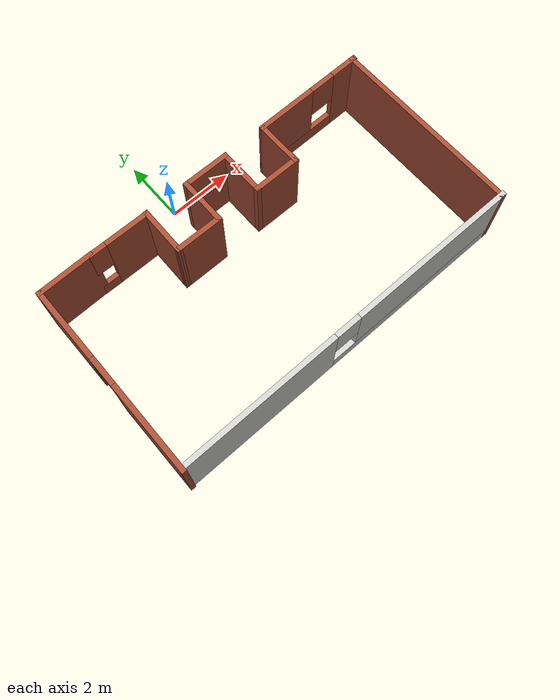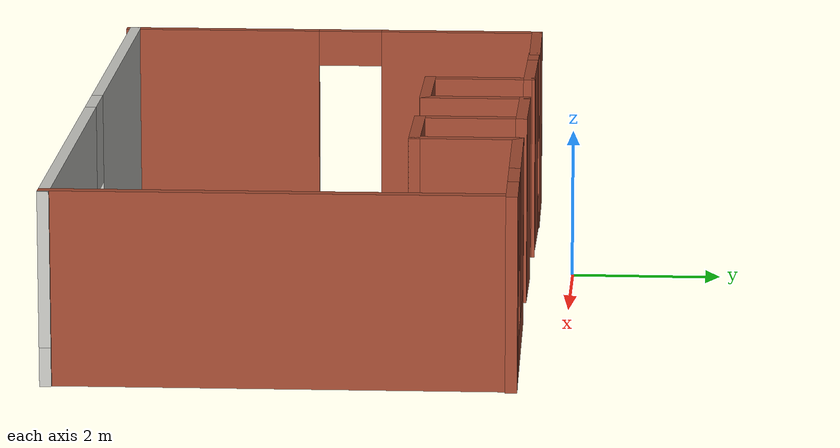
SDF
<?xml version='1.0'?>
<sdf version='1.6'>
  <model name='wall_structure'>
    <pose frame=''>0.919538 -3.54038 0 0 -0 0</pose>
    <link name='Wall_0'>
      <collision name='Wall_0_Collision'>
        <geometry>
          <box>
            <size>1.76012 0.15 2.5</size>
          </box>
        </geometry>
        <pose frame=''>0 0 1.25 0 -0 0</pose>
      </collision>
      <visual name='Wall_0_Visual'>
        <pose frame=''>0 0 1.25 0 -0 0</pose>
        <geometry>
          <box>
            <size>1.76012 0.15 2.5</size>
          </box>
        </geometry>
        <material>
          <script>
            <uri>file://media/materials/scripts/gazebo.material</uri>
            <name>Gazebo/Bricks</name>
          </script>
          <ambient>0.760784 0.662745 0.627451 1</ambient>
        </material>
        <meta>
          <layer>0</layer>
        </meta>
      </visual>
      <pose frame=''>-4.66454 2.91038 0 0 0 -3.12917</pose>
    </link>
    <link name='Wall_1'>
      <pose frame=''>-5.47954 -0.018632 0 0 0 -1.57422</pose>
      <visual name='Wall_1_Visual_0'>
        <pose frame=''>-1.84013 0 1.25 0 -0 0</pose>
        <geometry>
          <box>
            <size>2.30781 0.15 2.5</size>
          </box>
        </geometry>
        <material>
          <script>
            <uri>file://media/materials/scripts/gazebo.material</uri>
            <name>Gazebo/Bricks</name>
          </script>
          <ambient>0.760784 0.662745 0.627451 1</ambient>
        </material>
        <meta>
          <layer>0</layer>
        </meta>
      </visual>
      <collision name='Wall_1_Collision_0'>
        <geometry>
          <box>
            <size>2.30781 0.15 2.5</size>
          </box>
        </geometry>
        <pose frame=''>-1.84013 0 1.25 0 -0 0</pose>
      </collision>
      <visual name='Wall_1_Visual_1'>
        <pose frame=''>1.6039 0 1.25 0 -0 0</pose>
        <geometry>
          <box>
            <size>2.78025 0.15 2.5</size>
          </box>
        </geometry>
        <material>
          <script>
            <uri>file://media/materials/scripts/gazebo.material</uri>
            <name>Gazebo/Bricks</name>
          </script>
          <ambient>0.760784 0.662745 0.627451 1</ambient>
        </material>
        <meta>
          <layer>0</layer>
        </meta>
      </visual>
      <collision name='Wall_1_Collision_1'>
        <geometry>
          <box>
            <size>2.78025 0.15 2.5</size>
          </box>
        </geometry>
        <pose frame=''>1.6039 0 1.25 0 -0 0</pose>
      </collision>
      <visual name='Wall_1_Visual_2'>
        <pose frame=''>-0.236222 0 2.25 0 -0 0</pose>
        <geometry>
          <box>
            <size>0.9 0.15 0.5</size>
          </box>
        </geometry>
        <material>
          <script>
            <uri>file://media/materials/scripts/gazebo.material</uri>
            <name>Gazebo/Bricks</name>
          </script>
          <ambient>0.760784 0.662745 0.627451 1</ambient>
        </material>
        <meta>
          <layer>0</layer>
        </meta>
      </visual>
      <collision name='Wall_1_Collision_2'>
        <geometry>
          <box>
            <size>0.9 0.15 0.5</size>
          </box>
        </geometry>
        <pose frame=''>-0.236222 0 2.25 0 -0 0</pose>
      </collision>
    </link>
    <link name='Wall_10'>
      <collision name='Wall_10_Collision'>
        <geometry>
          <box>
            <size>1.5 0.15 2.5</size>
          </box>
        </geometry>
        <pose frame=''>0 0 1.25 0 -0 0</pose>
      </collision>
      <visual name='Wall_10_Visual'>
        <pose frame=''>0 0 1.25 0 -0 0</pose>
        <geometry>
          <box>
            <size>1.5 0.15 2.5</size>
          </box>
        </geometry>
        <material>
          <script>
            <uri>file://media/materials/scripts/gazebo.material</uri>
            <name>Gazebo/Bricks</name>
          </script>
          <ambient>0.760784 0.662745 0.627451 1</ambient>
        </material>
        <meta>
          <layer>0</layer>
        </meta>
      </visual>
      <pose frame=''>-1.36454 1.54038 0 0 -0 3.14159</pose>
    </link>
    <link name='Wall_11'>
      <collision name='Wall_11_Collision'>
        <geometry>
          <box>
            <size>1.52004 0.15 2.5</size>
          </box>
        </geometry>
        <pose frame=''>0 0 1.25 0 -0 0</pose>
      </collision>
      <visual name='Wall_11_Visual'>
        <pose frame=''>0 0 1.25 0 -0 0</pose>
        <geometry>
          <box>
            <size>1.52004 0.15 2.5</size>
          </box>
        </geometry>
        <material>
          <script>
            <uri>file://media/materials/scripts/gazebo.material</uri>
            <name>Gazebo/Bricks</name>
          </script>
          <ambient>0.760784 0.662745 0.627451 1</ambient>
        </material>
        <meta>
          <layer>0</layer>
        </meta>
      </visual>
      <pose frame=''>-2.03454 2.22538 0 0 -0 1.5635</pose>
    </link>
    <link name='Wall_12'>
      <pose frame=''>-2.94454 2.90538 0 0 -0 3.13613</pose>
      <visual name='Wall_12_Visual_0'>
        <pose frame=''>-0.272445 0 1.25 0 -0 0</pose>
        <geometry>
          <box>
            <size>1.43514 0.15 2.5</size>
          </box>
        </geometry>
        <material>
          <script>
            <uri>file://media/materials/scripts/gazebo.material</uri>
            <name>Gazebo/Bricks</name>
          </script>
          <ambient>0.760784 0.662745 0.627451 1</ambient>
        </material>
        <meta>
          <layer>0</layer>
        </meta>
      </visual>
      <collision name='Wall_12_Collision_0'>
        <geometry>
          <box>
            <size>1.43514 0.15 2.5</size>
          </box>
        </geometry>
        <pose frame=''>-0.272445 0 1.25 0 -0 0</pose>
      </collision>
      <visual name='Wall_12_Visual_1'>
        <pose frame=''>0.717569 0 0.25 0 -0 0</pose>
        <geometry>
          <box>
            <size>0.54489 0.15 0.5</size>
          </box>
        </geometry>
        <material>
          <script>
            <uri>file://media/materials/scripts/gazebo.material</uri>
            <name>Gazebo/Bricks</name>
          </script>
          <ambient>0.760784 0.662745 0.627451 1</ambient>
        </material>
        <meta>
          <layer>0</layer>
        </meta>
      </visual>
      <collision name='Wall_12_Collision_1'>
        <geometry>
          <box>
            <size>0.54489 0.15 0.5</size>
          </box>
        </geometry>
        <pose frame=''>0.717569 0 0.25 0 -0 0</pose>
      </collision>
      <visual name='Wall_12_Visual_2'>
        <pose frame=''>0.717569 0 1.9 0 -0 0</pose>
        <geometry>
          <box>
            <size>0.54489 0.15 1.2</size>
          </box>
        </geometry>
        <material>
          <script>
            <uri>file://media/materials/scripts/gazebo.material</uri>
            <name>Gazebo/Bricks</name>
          </script>
          <ambient>0.760784 0.662745 0.627451 1</ambient>
        </material>
        <meta>
          <layer>0</layer>
        </meta>
      </visual>
      <collision name='Wall_12_Collision_2'>
        <geometry>
          <box>
            <size>0.54489 0.15 1.2</size>
          </box>
        </geometry>
        <pose frame=''>0.717569 0 1.9 0 -0 0</pose>
      </collision>
    </link>
    <link name='Wall_2'>
      <pose frame=''>-0.00037 -2.89112 0 0 -0 0</pose>
      <visual name='Wall_2_Visual_0'>
        <pose frame=''>-3.06134 0 1.25 0 -0 0</pose>
        <geometry>
          <box>
            <size>5.00566 0.15 2.5</size>
          </box>
        </geometry>
        <material>
          <script>
            <uri>file://media/materials/scripts/gazebo.material</uri>
            <name>Gazebo/CeilingTiled</name>
          </script>
          <ambient>0.921569 0.807843 0.615686 1</ambient>
        </material>
        <meta>
          <layer>0</layer>
        </meta>
      </visual>
      <collision name='Wall_2_Collision_0'>
        <geometry>
          <box>
            <size>5.00566 0.15 2.5</size>
          </box>
        </geometry>
        <pose frame=''>-3.06134 0 1.25 0 -0 0</pose>
      </collision>
      <visual name='Wall_2_Visual_1'>
        <pose frame=''>2.50283 0 0.25 0 -0 0</pose>
        <geometry>
          <box>
            <size>6.12268 0.15 0.5</size>
          </box>
        </geometry>
        <material>
          <script>
            <uri>file://media/materials/scripts/gazebo.material</uri>
            <name>Gazebo/CeilingTiled</name>
          </script>
          <ambient>0.921569 0.807843 0.615686 1</ambient>
        </material>
        <meta>
          <layer>0</layer>
        </meta>
      </visual>
      <collision name='Wall_2_Collision_1'>
        <geometry>
          <box>
            <size>6.12268 0.15 0.5</size>
          </box>
        </geometry>
        <pose frame=''>2.50283 0 0.25 0 -0 0</pose>
      </collision>
      <visual name='Wall_2_Visual_2'>
        <pose frame=''>2.90283 0 1.5 0 -0 0</pose>
        <geometry>
          <box>
            <size>5.32268 0.15 2</size>
          </box>
        </geometry>
        <material>
          <script>
            <uri>file://media/materials/scripts/gazebo.material</uri>
            <name>Gazebo/CeilingTiled</name>
          </script>
          <ambient>0.921569 0.807843 0.615686 1</ambient>
        </material>
        <meta>
          <layer>0</layer>
        </meta>
      </visual>
      <collision name='Wall_2_Collision_2'>
        <geometry>
          <box>
            <size>5.32268 0.15 2</size>
          </box>
        </geometry>
        <pose frame=''>2.90283 0 1.5 0 -0 0</pose>
      </collision>
      <visual name='Wall_2_Visual_3'>
        <pose frame=''>-0.158511 0 1.9 0 -0 0</pose>
        <geometry>
          <box>
            <size>0.8 0.15 1.2</size>
          </box>
        </geometry>
        <material>
          <script>
            <uri>file://media/materials/scripts/gazebo.material</uri>
            <name>Gazebo/CeilingTiled</name>
          </script>
          <ambient>0.921569 0.807843 0.615686 1</ambient>
        </material>
        <meta>
          <layer>0</layer>
        </meta>
      </visual>
      <collision name='Wall_2_Collision_3'>
        <geometry>
          <box>
            <size>0.8 0.15 1.2</size>
          </box>
        </geometry>
        <pose frame=''>-0.158511 0 1.9 0 -0 0</pose>
      </collision>
    </link>
    <link name='Wall_3'>
      <collision name='Wall_3_Collision'>
        <geometry>
          <box>
            <size>5.97803 0.15 2.5</size>
          </box>
        </geometry>
        <pose frame=''>0 0 1.25 0 -0 0</pose>
      </collision>
      <visual name='Wall_3_Visual'>
        <pose frame=''>0 0 1.25 0 -0 0</pose>
        <geometry>
          <box>
            <size>5.97803 0.15 2.5</size>
          </box>
        </geometry>
        <material>
          <script>
            <uri>file://media/materials/scripts/gazebo.material</uri>
            <name>Gazebo/Bricks</name>
          </script>
          <ambient>0.760784 0.662745 0.627451 1</ambient>
        </material>
        <meta>
          <layer>0</layer>
        </meta>
      </visual>
      <pose frame=''>5.44228 0.022892 0 0 -0 1.5708</pose>
    </link>
    <link name='Wall_4'>
      <pose frame=''>3.74963 2.91364 0 0 0 -3.12822</pose>
      <visual name='Wall_4_Visual_0'>
        <pose frame=''>-1.35631 0 1.25 0 -0 0</pose>
        <geometry>
          <box>
            <size>0.916031 0.15 2.5</size>
          </box>
        </geometry>
        <material>
          <script>
            <uri>file://media/materials/scripts/gazebo.material</uri>
            <name>Gazebo/Bricks</name>
          </script>
          <ambient>0.760784 0.662745 0.627451 1</ambient>
        </material>
        <meta>
          <layer>0</layer>
        </meta>
      </visual>
      <collision name='Wall_4_Collision_0'>
        <geometry>
          <box>
            <size>0.916031 0.15 2.5</size>
          </box>
        </geometry>
        <pose frame=''>-1.35631 0 1.25 0 -0 0</pose>
      </collision>
      <visual name='Wall_4_Visual_1'>
        <pose frame=''>0.458016 0 0.25 0 -0 0</pose>
        <geometry>
          <box>
            <size>2.71262 0.15 0.5</size>
          </box>
        </geometry>
        <material>
          <script>
            <uri>file://media/materials/scripts/gazebo.material</uri>
            <name>Gazebo/Bricks</name>
          </script>
          <ambient>0.760784 0.662745 0.627451 1</ambient>
        </material>
        <meta>
          <layer>0</layer>
        </meta>
      </visual>
      <collision name='Wall_4_Collision_1'>
        <geometry>
          <box>
            <size>2.71262 0.15 0.5</size>
          </box>
        </geometry>
        <pose frame=''>0.458016 0 0.25 0 -0 0</pose>
      </collision>
      <visual name='Wall_4_Visual_2'>
        <pose frame=''>0.858016 0 1.5 0 -0 0</pose>
        <geometry>
          <box>
            <size>1.91262 0.15 2</size>
          </box>
        </geometry>
        <material>
          <script>
            <uri>file://media/materials/scripts/gazebo.material</uri>
            <name>Gazebo/Bricks</name>
          </script>
          <ambient>0.760784 0.662745 0.627451 1</ambient>
        </material>
        <meta>
          <layer>0</layer>
        </meta>
      </visual>
      <collision name='Wall_4_Collision_2'>
        <geometry>
          <box>
            <size>1.91262 0.15 2</size>
          </box>
        </geometry>
        <pose frame=''>0.858016 0 1.5 0 -0 0</pose>
      </collision>
      <visual name='Wall_4_Visual_3'>
        <pose frame=''>-0.498293 0 1.9 0 -0 0</pose>
        <geometry>
          <box>
            <size>0.8 0.15 1.2</size>
          </box>
        </geometry>
        <material>
          <script>
            <uri>file://media/materials/scripts/gazebo.material</uri>
            <name>Gazebo/Bricks</name>
          </script>
          <ambient>0.760784 0.662745 0.627451 1</ambient>
        </material>
        <meta>
          <layer>0</layer>
        </meta>
      </visual>
      <collision name='Wall_4_Collision_3'>
        <geometry>
          <box>
            <size>0.8 0.15 1.2</size>
          </box>
        </geometry>
        <pose frame=''>-0.498293 0 1.9 0 -0 0</pose>
      </collision>
    </link>
    <link name='Wall_5'>
      <collision name='Wall_5_Collision'>
        <geometry>
          <box>
            <size>1.5 0.15 2.5</size>
          </box>
        </geometry>
        <pose frame=''>0 0 1.25 0 -0 0</pose>
      </collision>
      <visual name='Wall_5_Visual'>
        <pose frame=''>0 0 1.25 0 -0 0</pose>
        <geometry>
          <box>
            <size>1.5 0.15 2.5</size>
          </box>
        </geometry>
        <material>
          <script>
            <uri>file://media/materials/scripts/gazebo.material</uri>
            <name>Gazebo/Bricks</name>
          </script>
          <ambient>0.760784 0.662745 0.627451 1</ambient>
        </material>
        <meta>
          <layer>0</layer>
        </meta>
      </visual>
      <pose frame=''>2.01046 2.21538 0 0 0 -1.5708</pose>
    </link>
    <link name='Wall_6'>
      <collision name='Wall_6_Collision'>
        <geometry>
          <box>
            <size>1.5 0.15 2.5</size>
          </box>
        </geometry>
        <pose frame=''>0 0 1.25 0 -0 0</pose>
      </collision>
      <visual name='Wall_6_Visual'>
        <pose frame=''>0 0 1.25 0 -0 0</pose>
        <geometry>
          <box>
            <size>1.5 0.15 2.5</size>
          </box>
        </geometry>
        <material>
          <script>
            <uri>file://media/materials/scripts/gazebo.material</uri>
            <name>Gazebo/Bricks</name>
          </script>
          <ambient>0.760784 0.662745 0.627451 1</ambient>
        </material>
        <meta>
          <layer>0</layer>
        </meta>
      </visual>
      <pose frame=''>1.33546 1.54038 0 0 -0 3.14159</pose>
    </link>
    <link name='Wall_7'>
      <collision name='Wall_7_Collision'>
        <geometry>
          <box>
            <size>1.5 0.15 2.5</size>
          </box>
        </geometry>
        <pose frame=''>0 0 1.25 0 -0 0</pose>
      </collision>
      <visual name='Wall_7_Visual'>
        <pose frame=''>0 0 1.25 0 -0 0</pose>
        <geometry>
          <box>
            <size>1.5 0.15 2.5</size>
          </box>
        </geometry>
        <material>
          <script>
            <uri>file://media/materials/scripts/gazebo.material</uri>
            <name>Gazebo/Bricks</name>
          </script>
          <ambient>0.760784 0.662745 0.627451 1</ambient>
        </material>
        <meta>
          <layer>0</layer>
        </meta>
      </visual>
      <pose frame=''>0.660462 2.21538 0 0 -0 1.5708</pose>
    </link>
    <link name='Wall_8'>
      <collision name='Wall_8_Collision'>
        <geometry>
          <box>
            <size>1.5 0.15 2.5</size>
          </box>
        </geometry>
        <pose frame=''>0 0 1.25 0 -0 0</pose>
      </collision>
      <visual name='Wall_8_Visual'>
        <pose frame=''>0 0 1.25 0 -0 0</pose>
        <geometry>
          <box>
            <size>1.5 0.15 2.5</size>
          </box>
        </geometry>
        <material>
          <script>
            <uri>file://media/materials/scripts/gazebo.material</uri>
            <name>Gazebo/Bricks</name>
          </script>
          <ambient>0.760784 0.662745 0.627451 1</ambient>
        </material>
        <meta>
          <layer>0</layer>
        </meta>
      </visual>
      <pose frame=''>-0.014538 2.89038 0 0 -0 3.14159</pose>
    </link>
    <link name='Wall_9'>
      <collision name='Wall_9_Collision'>
        <geometry>
          <box>
            <size>1.5 0.15 2.5</size>
          </box>
        </geometry>
        <pose frame=''>0 0 1.25 0 -0 0</pose>
      </collision>
      <visual name='Wall_9_Visual'>
        <pose frame=''>0 0 1.25 0 -0 0</pose>
        <geometry>
          <box>
            <size>1.5 0.15 2.5</size>
          </box>
        </geometry>
        <material>
          <script>
            <uri>file://media/materials/scripts/gazebo.material</uri>
            <name>Gazebo/Bricks</name>
          </script>
          <ambient>1 1 1 1</ambient>
        </material>
        <meta>
          <layer>0</layer>
        </meta>
      </visual>
      <pose frame=''>-0.689538 2.21538 0 0 0 -1.5708</pose>
    </link>
    <static>1</static>
  </model>
</sdf>
